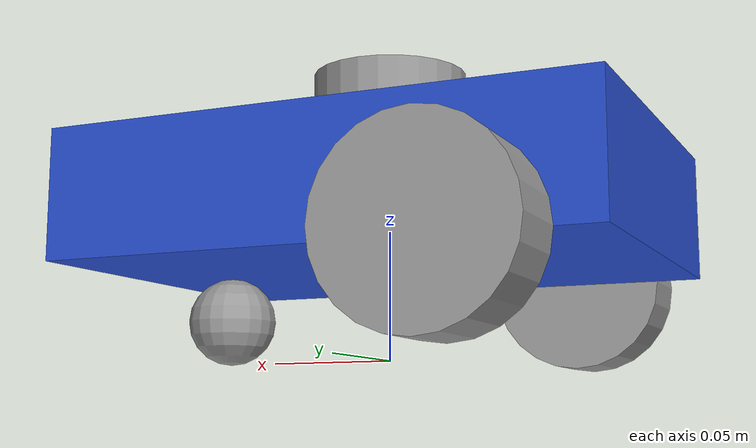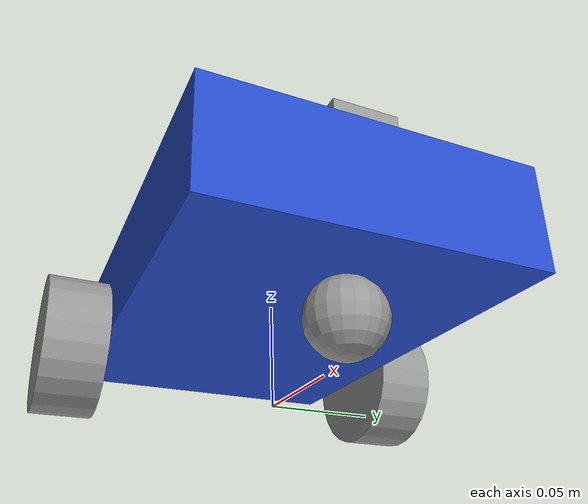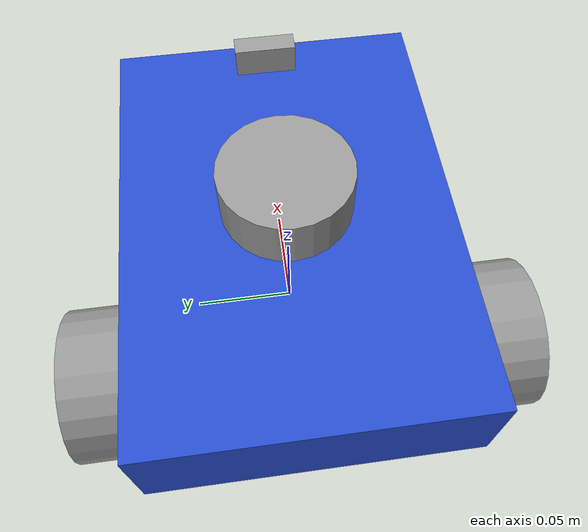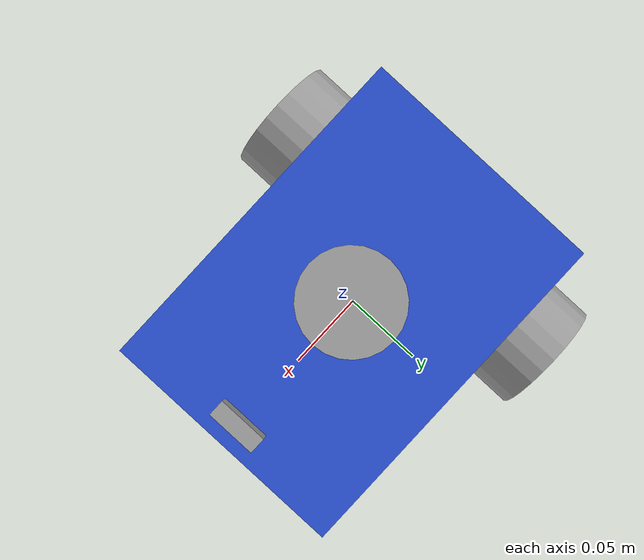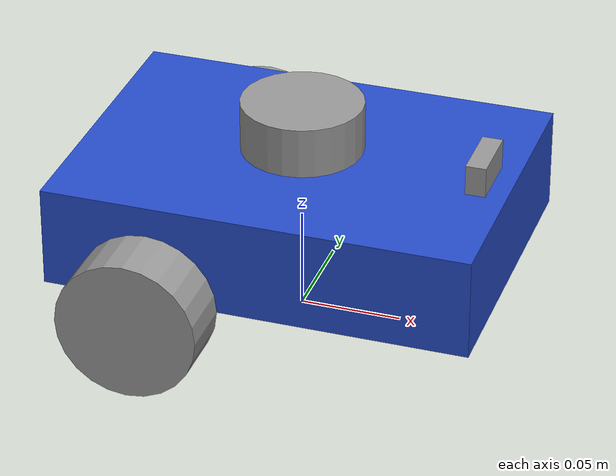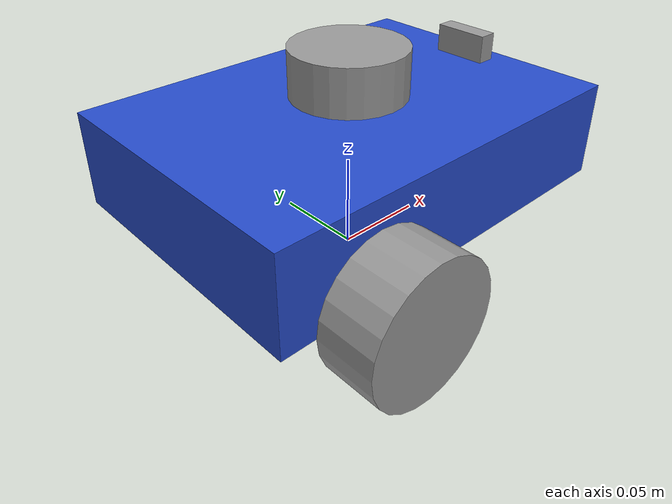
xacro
<?xml version="1.0"?>
<robot name="my_robot" xmlns:xacro="http://www.ros.org/wiki/xacro">
  <!-- Load Simulated or Real Hardware Interfaces -->
    <xacro:arg name="is_sim" default="true"/>
    <xacro:include filename="common_properties.xacro"/>
    <xacro:include filename="base_robot.xacro"/>
    <xacro:include filename="camera.xacro"/>
    <xacro:include filename="laser.xacro"/>
    <xacro:include filename="base_robot_gazebo.xacro"/>
    <xacro:include filename="$(find new_robot_description)/urdf/ros2_control.xacro" />
</robot>

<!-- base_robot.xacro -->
<robot xmlns:xacro="http://www.ros.org/wiki/xacro">

    <xacro:property name="base_length" value="0.21" />
    <xacro:property name="base_width" value="0.15" />
    <xacro:property name="base_height" value="0.05" />
    <xacro:property name="wheel_radius" value="0.035" />
    <xacro:property name="wheel_length" value="0.03" />

    <link name="base_footprint" />

    <link name="base_link">
        <visual>
            <geometry>
                <box size="${base_length} ${base_width} ${base_height}" />
            </geometry>
            <origin xyz="0 0 ${base_height / 2.0}" rpy="0 0 0" />
            <material name="blue" />
        </visual>
        <collision>
            <geometry>
                <box size="${base_length} ${base_width} ${base_height}" />
            </geometry>
            <origin xyz="0 0 ${base_height / 2.0}" rpy="0 0 0" />
        </collision>
        <xacro:box_inertia m="5.0" l="${2*base_length}" w="${2*base_width}" h="${2*base_height}"
                           xyz="0 0 ${base_height / 2.0}" rpy="0 0 0" />
    </link>

    <xacro:macro name="wheel_link" params="prefix">
        <link name="${prefix}_wheel_link">
            <visual>
                <geometry>
                    <cylinder radius="${wheel_radius}" length="${wheel_length}" />
                </geometry>
                <origin xyz="0 0 0" rpy="${pi / 2.0} 0 0" />
                <material name="grey" />
            </visual>
            <collision>
                <geometry>
                    <sphere radius="${wheel_radius}"  />
                </geometry>
                <origin xyz="0 0 0" rpy="${pi / 2.0} 0 0" />
            </collision>
            <xacro:cylinder_inertia m="1.0" r="${2*wheel_radius}" h="${2*wheel_length}"
                                    xyz="0 0 0" rpy="${pi / 2.0} 0 0" />
        </link>
    </xacro:macro>

    <xacro:wheel_link prefix="right" />
    <xacro:wheel_link prefix="left" />

    <link name="caster_wheel_link">
        <visual>
            <geometry>
                <sphere radius="${wheel_radius / 2.0}" />
            </geometry>
            <origin xyz="0 0 0" rpy="0 0 0" />
            <material name="grey" />
        </visual>
        <collision>
            <geometry>
                <sphere radius="${wheel_radius / 2.0}" />
            </geometry>
            <origin xyz="0 0 0" rpy="0 0 0" />
        </collision>
        <xacro:sphere_inertia m="0.5" r="${2*wheel_radius / 2.0}"
                              xyz="0 0 0" rpy="0 0 0" />
    </link>

    <joint name="base_joint" type="fixed">
        <parent link="base_footprint" />
        <child link="base_link" />
        <origin xyz="0 0 ${wheel_radius}" rpy="0 0 0"/>
    </joint>

    <joint name="base_right_wheel_joint" type="continuous">
        <parent link="base_link" />
        <child link="right_wheel_link" />
        <origin xyz="${-base_length / 4.0} ${-(base_width + wheel_length) / 2.0} 0" rpy="0 0 0" />
        <axis xyz="0 1 0" />
    </joint>

    <joint name="base_left_wheel_joint" type="continuous">
        <parent link="base_link" />
        <child link="left_wheel_link" />
        <origin xyz="${-base_length / 4.0} ${(base_width + wheel_length) / 2.0} 0" rpy="0 0 0" />
        <axis xyz="0 1 0" />
    </joint>

    <joint name="base_caster_wheel_joint" type="fixed">
        <parent link="base_link" />
        <child link="caster_wheel_link" />
        <origin xyz="${base_length / 3.0} 0 ${-wheel_radius / 2.0}" rpy="0 0 0" />
    </joint>

</robot>

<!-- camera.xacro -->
<robot xmlns:xacro="http://www.ros.org/wiki/xacro" >

    <link name="camera_frame">
        <visual>
            <geometry>
                <box size="0.010 0.03 0.03"/>
            </geometry>
            <material name="grey"/>
        </visual>
    </link>

    <joint name="base_camera_joint" type="fixed">
        <parent link="base_link"/>
        <child link="camera_frame"/>
        <origin xyz="0.09 0.0 0.05" rpy="0 0 0"/>
    </joint>

    <joint name="camera_optical_joint" type="fixed">
        <parent link="camera_frame"/>
        <child link="camera_link_optical"/>
        <origin xyz="0 0 0" rpy="${-pi/2} 0 ${-pi/2}"/>
    </joint>

    <link name="camera_link_optical"></link>

    <gazebo reference="camera_frame">
        <sensor name="camera" type="camera">
            <pose>0 0 0 0 0 0</pose>
            <visualize>true</visualize>
            <update_rate>30</update_rate>
            <camera>
                <horizontal_fov>1.089</horizontal_fov>
                <image>
                    <format>R8G8B8</format>
                    <width>640</width>
                    <height>480</height>
                </image>
                <clip>
                    <near>0.05</near>
                    <far>8.0</far>
                </clip>
            </camera>
            <plugin name="camera_controller" filename="libgazebo_ros_camera.so">
                <ros>
                    <namespace>/camera</namespace>
                    <argument>~/image_raw:=image_raw</argument>
                </ros>
                <camera_name>camera</camera_name>
                <frame_name>camera_link_optical</frame_name>
            </plugin>
        </sensor>
    </gazebo>

</robot>

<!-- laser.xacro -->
<robot xmlns:xacro="http://www.ros.org/wiki/xacro">

<xacro:property name="radius" value="0.03"/>

    <link name="laser_sensor_link">
        <visual>
            <geometry>
                <cylinder radius="${radius}" length="0.025"/>
            </geometry>
            <origin xyz="0.0 0.0 0.015" rpy="0 0 0"/>
            <material name="grey"/>
        </visual>
          <xacro:cylinder_inertia  r="${radius}" m="0.1" h="${radius}" xyz="0 0 0" rpy="0 0 0"/>
           <collision>
            <geometry>
                <cylinder radius="${radius}" length="${radius}"/>
            </geometry>
            <origin xyz="0.0 0.0 0.025" rpy="0 0 0"/>
           </collision>
    </link>

    <joint name="base_laser_joint" type="fixed">
        <parent link="base_link"/>
        <child link="laser_sensor_link"/>
        <origin xyz="0.0 0.0 0.05"/>
    </joint>

    <gazebo reference="laser_sensor_link">
        <material>Gazebo/Yellow</material>
        <sensor name="laser" type="ray">
            <pose> 0 0 0 0 0 0 </pose>
            <visualize>true</visualize>
            <update_rate>10</update_rate>
            <ray>
                <scan>
                    <horizontal>
                        <samples>360</samples>
                        <min_angle>-3.14</min_angle>
                        <max_angle>3.14</max_angle>
                    </horizontal>
                </scan>
                <range>
                    <min>0.12</min>
                    <max>12</max>
                </range>
            </ray>
            <plugin name="laser_controller" filename="libgazebo_ros_ray_sensor.so">
                <ros>
                    <argument>~/out:=scan</argument>
                </ros>
                <output_type>sensor_msgs/LaserScan</output_type>
                <frame_name>laser_sensor_link</frame_name>
            </plugin>
        </sensor>
    </gazebo>
    </robot>
